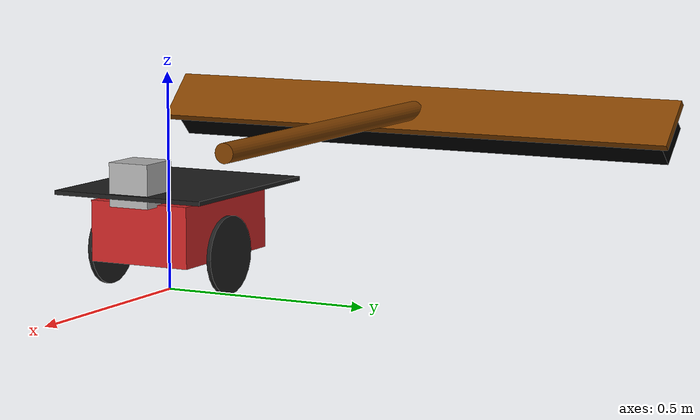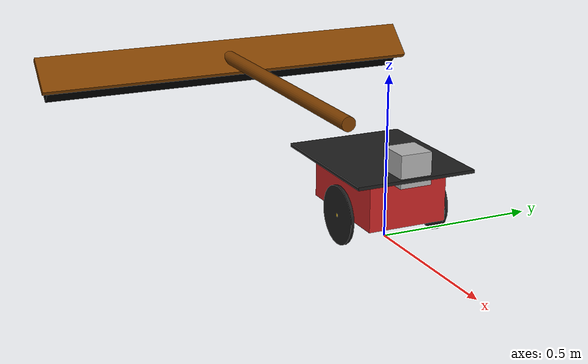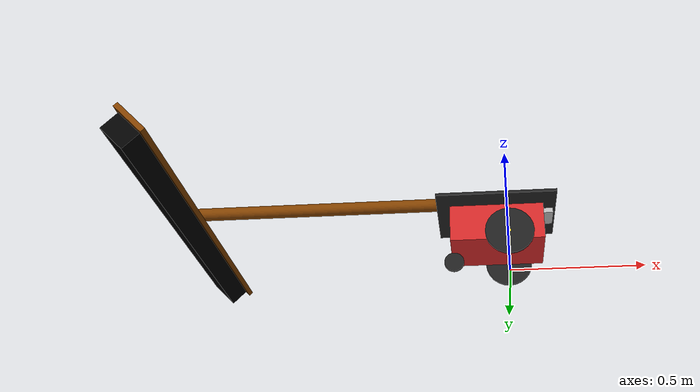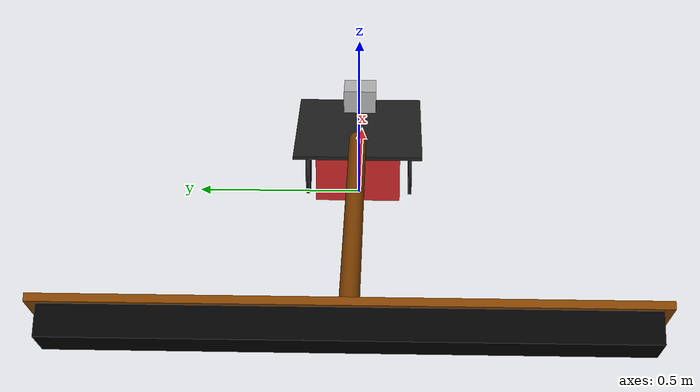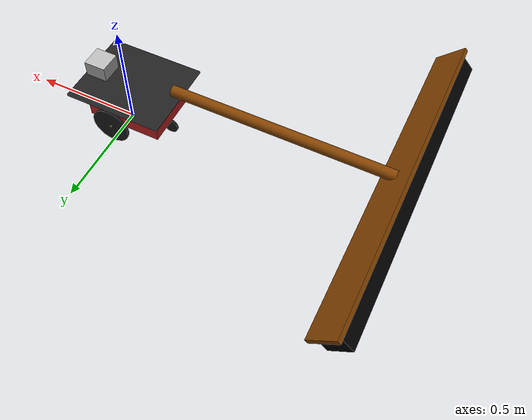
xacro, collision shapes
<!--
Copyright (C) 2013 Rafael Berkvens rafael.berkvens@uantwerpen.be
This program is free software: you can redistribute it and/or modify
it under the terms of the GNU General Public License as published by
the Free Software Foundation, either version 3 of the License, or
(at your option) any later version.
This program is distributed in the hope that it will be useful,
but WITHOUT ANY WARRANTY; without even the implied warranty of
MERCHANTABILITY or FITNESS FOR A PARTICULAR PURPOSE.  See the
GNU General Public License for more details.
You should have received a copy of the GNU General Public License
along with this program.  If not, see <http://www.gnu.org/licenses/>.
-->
<?xml version="1.0"?>
<robot name="pioneer3dx"
	xmlns:xacro="http://ros.org/wiki/xacro">
	<!-- import all gazebo-customization elements, including gazebo colors -->
	<xacro:include filename="$(find p3dx_description)/urdf/pioneer3dx.gazebo" />
	<!-- import the pioneer 3dx's wheels -->
	<xacro:include filename="$(find p3dx_description)/urdf/pioneer3dx_wheel.xacro" />
	<!-- chassis -->
	<link name="base_link">
		<inertial>
			<mass value="3.5" />
			<origin xyz="-0.05 0 0" />
			<inertia ixx="1" ixy="0" ixz="0" iyy="1" iyz="0" izz="1" />
		</inertial>
		<visual>
			<origin xyz="-0.045 0 0.148" rpy="0 0 0" />
			<geometry name="pioneer_geom">
				<mesh filename="package://p3dx_description/meshes/chassis.stl" />
			</geometry>
			<material name="ChassisRed"></material>
		</visual>
		<collision>
			<origin xyz="-0.045 0 0.145" rpy="0 0 0" />
			<geometry>
				<box size="0.35 0.25 0.14" />
			</geometry>
		</collision>
	</link>
	<!-- top_plate -->
	<link name="top_plate">
		<inertial>
			<mass value="0.01" />
			<origin xyz="0 0 0" />
			<inertia ixx="1" ixy="0" ixz="0" iyy="1" iyz="0" izz="1" />
		</inertial>
		<visual>
			<origin xyz="0 0 0" rpy="0 0 0" />
			<geometry name="top_geom">
				<mesh filename="package://p3dx_description/meshes/top.stl" />
			</geometry>
			<material name="TopBlack"></material>
		</visual>
		<collision>
			<origin xyz="0.0 0 0" rpy="0 0 0" />
			<geometry name="pioneer_geom">
				<box size="0.45 0.38 0.01" />
			</geometry>
		</collision>
	</link>
	<joint name="base_top_joint" type="fixed">
		<origin xyz="-0.045 0 0.234" rpy="0 0 0" />
		<parent link="base_link" />
		<child link="top_plate" />
	</joint>
	<!-- swivel -->
	<link name="swivel">
		<inertial>
			<mass value="0.1" />
			<origin xyz="0 0 0" />
			<inertia ixx="0.01" ixy="0" ixz="0" iyy="0.01" iyz="0" izz="0.01" />
		</inertial>
		<visual>
			<origin xyz="0 0 0" rpy="0 0 0" />
			<geometry name="pioneer_geom">
				<mesh filename="package://p3dx_description/meshes/swivel.stl" />
			</geometry>
			<material name="swivel"></material>
		</visual>
		<collision>
			<origin xyz="0 0 0" rpy="0 0 0" />
			<geometry>
				<box size="0.00001 0.00001 0.00001" />
			</geometry>
		</collision>
	</link>
	<joint name="base_swivel_joint" type="fixed">
		<origin xyz="-0.185 0 0.055" rpy="0 0 0" />
		<axis xyz="0 0 1" />
		<anchor xyz="0 0 0" />
		<limit effort="100" velocity="100" k_velocity="0" />
		<joint_properties damping="0.0" friction="0.0" />
		<parent link="base_link" />
		<child link="swivel" />
	</joint>
	<!-- center_hubcap -->
	<link name="center_hubcap">
		<inertial>
			<mass value="0.01" />
			<origin xyz="0 0 0" />
			<inertia ixx="0.012411765597" ixy="-0.000711733678" ixz="0.00050272983" iyy="0.015218160428" iyz="-0.000004273467" izz="0.011763977943" />
		</inertial>
		<visual>
			<origin xyz="0 0 0" rpy="0 0 0" />
			<geometry name="pioneer_geom">
				<mesh filename="package://p3dx_description/meshes/center_hubcap.stl" />
			</geometry>
			<material name="swivel"></material>
		</visual>
		<collision>
			<origin xyz="0 0 0" rpy="0 0 0" />
			<geometry>
				<box size="0.00001 0.00001 0.00001" />
			</geometry>
		</collision>
	</link>
	<joint name="swivel_hubcap_joint" type="fixed">
		<origin xyz="-0.026 0 -0.016" rpy="0 0 0" />
		<axis xyz="0 1 0" />
		<anchor xyz="0 0 0" />
		<limit effort="100" velocity="100" k_velocity="0" />
		<joint_properties damping="0.0" friction="0.0" />
		<parent link="swivel" />
		<child link="center_wheel" />
	</joint>
	<!-- center_wheel -->
	<link name="center_wheel">
		<inertial>
			<mass value="1.0" />
			<origin xyz="0 0 0" />
			<inertia ixx="0.012411765597" ixy="-0.000711733678" ixz="0.00050272983" iyy="0.015218160428" iyz="-0.000004273467" izz="0.011763977943" />
		</inertial>
		<visual>
			<origin xyz="0 0 0" rpy="0 0 0" />
			<geometry name="pioneer_geom">
				<mesh filename="package://p3dx_description/meshes/center_wheel.stl" />
			</geometry>
			<material name="WheelBlack"></material>
		</visual>
		<collision>
			<origin xyz="0 0 0" rpy="${-3.1415927/2.0} 0 0" />
			<geometry>
				<cylinder radius="0.0375" length="0.01" />
			</geometry>
		</collision>
	</link>
	<joint name="center_wheel_joint" type="fixed">
		<origin xyz="-0.0035 0 -0.001" rpy="0 0 0"/>
		<parent link="center_wheel"/>
		<child link="center_hubcap"/>
	</joint>

	<!-- Adicionando a vassoura -->
	<material name="green">
		<color rgba="0 0 0 1"/>
	</material>

	<material name="brown">
		<color rgba="0.5 0.25 0 1"/>
	</material>

	<material name="pink">
		<color rgba="1 0.078 0.576 1"/>
	</material>

	<link name="z_cilinder_joint">
		<visual>
			<geometry>
				<cylinder length="0.05" radius="0.025"/>
			</geometry>
			<material name="pink"/>
			<origin rpy="0 0 0" xyz="0 0 0"/>
		</visual>
		<inertial>
			<origin xyz="0 0 0" rpy="0 0 0"/>
			<mass value="0.05"/>
			<inertia ixx="0.00001823" ixy="0.0" ixz="0.0" iyy="0.00001823" iyz="0.0" izz="0.00001563"/>
		</inertial>
	</link>

	<gazebo reference="z_cilinder_joint">
		<material>Gazebo/Pink</material>
	</gazebo>

	<joint name="z_cilinder_joint_to_robot" type="continuous">
		<parent link="top_plate"/>
		<child link="z_cilinder_joint"/>
		<origin rpy="0 0 0" xyz="-0.2 0 0.025"/>
		<axis xyz="0 0 1"/>
	</joint>

	<link name="y_cilinder_joint">
		<visual>
			<geometry>
				<cylinder length="0.05" radius="0.025"/>
			</geometry>
			<material name="pink"/>
			<origin rpy="1.57079632679 0 0" xyz="0 0 0"/>
		</visual>
		<inertial>
			<origin xyz="0 0 0" rpy="0 0 0"/>
			<mass value="0.05"/>
			<inertia ixx="0.00001823" ixy="0.0" ixz="0.0" iyy="0.00001823" iyz="0.0" izz="0.00001563"/>
		</inertial>
	</link>

	<gazebo reference="y_cilinder_joint">
		<material>Gazebo/Pink</material>
	</gazebo>

	<joint name="y_cilinder_joint_to_robot" type="continuous">
		<parent link="z_cilinder_joint"/>
		<child link="y_cilinder_joint"/>
		<origin rpy="0 0 0" xyz="0 0 0.025"/>
		<axis xyz="0 1 0"/>
	</joint>

	<link name="handle">
		<visual>
			<geometry>
				<cylinder length="1" radius="0.025"/>
			</geometry>
			<material name="brown"/>
			<origin rpy="0 0.78539816339 0" xyz="-0.35355339059 0 -0.35355339059"/>
		</visual>
		<collision>
			<geometry>
				<cylinder length="1" radius="0.025"/>
			</geometry>
			<origin rpy="0 0.78539816339 0" xyz="-0.35355339059 0 -0.35355339059"/>
		</collision>
		<inertial>
			<origin xyz="0 0 0" rpy="0 0 0"/>
			<mass value="0.3"/>
			<inertia ixx="0.02504687" ixy="0.0" ixz="0.0" iyy="0.02504687" iyz="0.0" izz="0.00009375"/>
		</inertial>
	</link>

	<gazebo reference="handle">
		<material>Gazebo/Brown</material>
	</gazebo>

	<joint name="handle_to_robot" type="fixed">
		<parent link="y_cilinder_joint"/>
		<child link="handle"/>
		<origin rpy="0 0.78539816339 0" xyz="0 0 0"/>
	</joint>

	<link name="brush_support">
		<visual>
			<geometry>
				<box size="0.15 1.5 0.02"/>
			</geometry>
			<origin rpy="0 0 0" xyz="0 0 0"/>
			<material name="brown"/>
		</visual>
		<collision>
			<geometry>
				<box size="0.15 1.5 0.02"/>
			</geometry>
			<origin rpy="0 0 0" xyz="0 0 0"/>
		</collision>
		<inertial>
			<origin xyz="0 0 0" rpy="0 0 0"/>
			<mass value="0.8"/>
			<inertia ixx="0.15002667" ixy="0.0" ixz="0.0" iyy="0.00152667" iyz="0.0" izz="0.1515"/>
		</inertial>
	</link>

	<gazebo reference="brush_support">
		<material>Gazebo/Brown</material>
	</gazebo>

	<joint name="handle_to_brush_support" type="fixed">
		<parent link="handle"/>
		<child link="brush_support"/>
		<origin rpy="0 0 0" xyz="-0.70710678 0 -0.70710678"/>
	</joint>

	<link name="brush">
		<visual>
			<geometry>
				<box size="0.12 1.45 0.09"/>
			</geometry>
			<origin rpy="0 0 0" xyz="0 0 -0.045"/>
			<material name="green"/>
		</visual>
		<collision>
			<geometry>
				<box size="0.12 1.45 0.09"/>
			</geometry>
			<origin rpy="0 0 0" xyz="0 0 -0.045"/>
		</collision>
		<inertial>
			<origin xyz="0 0 0" rpy="0 0 0"/>
			<mass value="0.2"/>
			<inertia ixx="0.03517667" ixy="0.0" ixz="0.0" iyy="0.000375" iyz="0.0" izz="0.03528167"/>
		</inertial>
	</link>

	<gazebo reference="brush">
		<material>Gazebo/Black</material>
		<mu1>1</mu1>
		<mu2>1.0</mu2>
		<kp>10000.0</kp>
		<kd>10.0</kd>
	</gazebo>

	<joint name="suport_to_brush" type="fixed">
		<parent link="brush_support"/>
		<child link="brush"/>
		<origin rpy="0 0 0" xyz="0 0 0"/>
	</joint>
	<xacro:p3dx_wheel suffix="left" parent="base_link" reflect="-1"/>
	<xacro:p3dx_wheel suffix="right" parent="base_link" reflect="1"/>
	<!-- front_sonar -->
	<link name="front_sonar">
		<inertial>
			<mass value="0.0001" />
			<origin xyz="0 0 0" />
			<inertia ixx="1" ixy="0" ixz="0" iyy="1" iyz="0" izz="1" />
		</inertial>
		<visual>
			<origin rpy="0 0 0" xyz="0 0 0" />
			<geometry name="pioneer_geom">
				<mesh filename="package://p3dx_description/meshes/front_sonar.stl" />
			</geometry>
			<material name="SonarYellow"></material>
		</visual>
		<collision>
			<origin rpy="0 0 0" xyz="0 0 0" />
			<geometry>
				<box size="0.00001 0.00001 0.00001" />
			</geometry>
		</collision>
	</link>
	<joint name="base_front_joint" type="fixed">
		<origin rpy="0 0 0" xyz="0.109 0 0.209" />
		<parent link="base_link" />
		<child link="front_sonar" />
	</joint>
	<!-- lms100 laser -->
	<link name="lms100">
		<inertial>
			<mass value="1e-5" />
			<origin xyz="0 0 0" rpy="0 0 0" />
			<inertia ixx="1e-6" ixy="0" ixz="0" iyy="1e-6" iyz="0" izz="1e-6" />
		</inertial>
		<visual>
			<origin xyz="0 0 0" rpy="0 0 0" />
			<geometry>
				<mesh filename="package://p3dx_description/meshes/lms100.dae" />
			</geometry>
		</visual>
		<collision>
			<origin xyz="0 0 0" rpy="0 0 0" />
			<geometry>
				<box size="0.1 0.1 0.1" />
			</geometry>
		</collision>
	</link>
	<joint name="lms100_joint" type="fixed">
		<axis xyz="0 1 0" />
		<origin xyz="0.12 0 0.26" rpy="0 0 0" />
		<parent link="base_link" />
		<child link="lms100" />
	</joint>
</robot>

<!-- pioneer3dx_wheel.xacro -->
<robot xmlns:xacro="http://ros.org/wiki/xacro">

	<!-- properties (constants) -->
	<property name="M_PI" value="3.14159" />

	<!-- right/left hubcap + wheel -->
	<xacro:macro name="p3dx_wheel" params="suffix parent reflect">

		<!-- wheel -->
		<link name="p3dx_${suffix}_wheel">
			<inertial>
				<mass value="0.5" />
				<origin xyz="0 0 0" />
				<inertia ixx="0.012411765597" ixy="0" ixz="0" iyy="0.015218160428"
					iyz="0" izz="0.011763977943" />
			</inertial>

			<visual name="base_visual">
				<origin xyz="0 0 0" rpy="0 0 0" />
				<geometry name="pioneer_geom">
					<mesh filename="package://p3dx_description/meshes/${suffix}_wheel.stl" />
				</geometry>
				<material name="WheelBlack">
					<color rgba="0.117 0.117 0.117 1" />
				</material>
			</visual>

			<collision>
				<origin xyz="0 0 0" rpy="${-3.1415927/2} 0 0" />
				<geometry>
					<cylinder radius="0.09" length="0.01" />
				</geometry>
			</collision>
		</link>

		<joint name="base_${suffix}_hubcap_joint" type="fixed">
			<origin xyz="0 0 0" rpy="0 0 0" />
			<parent link="p3dx_${suffix}_wheel" />
			<child link="p3dx_${suffix}_hubcap" />
		</joint>

		<!-- hubcap -->
		<link name="p3dx_${suffix}_hubcap">
			<inertial>
				<mass value="0.01" />
				<origin xyz="0 0 0" />
				<inertia ixx="0.012411765597" ixy="0" ixz="0" iyy="0.015218160428"
					iyz="0" izz="0.011763977943" />
			</inertial>

			<visual name="base_visual">
				<origin xyz="0 0 0" rpy="0 0 0" />
				<geometry name="pioneer_geom">
					<mesh filename="package://p3dx_description/meshes/${suffix}_hubcap.stl" />
				</geometry>

				<material name="HubcapYellow">
					<color rgba="1.0 0.811 0.151 1.0" />
				</material>
			</visual>

			<collision>
				<origin xyz="0 0 0" rpy="0 0 0" />
				<geometry>
					<box size="0.01 0.01 0.01" />
				</geometry>
			</collision>
		</link>

		<joint name="base_${suffix}_wheel_joint" type="continuous">
			<axis xyz="0 1 0" />
			<anchor xyz="0 0 0" />
			<limit effort="100" velocity="100" />
			<joint_properties damping="0.0" friction="0.0" />
			<origin xyz="0 ${reflect*0.158} 0.091" rpy="0 0 0" />
			<parent link="base_link" />
			<child link="p3dx_${suffix}_wheel" />
		</joint>

		<!-- gazebo elements -->

	    <transmission name="${parent}_${suffix}_wheel_trans">
	      <type>pr2_mechanism_model/SimpleTransmission</type>
	      <joint name="base_${suffix}_wheel_joint">
	      	<hardwareInterface>VelocityJointInterface</hardwareInterface>
	  	  </joint>
	      <actuator name="base_${suffix}_wheel_motor">
	        <mechanicalReduction>${reflect * 624/35 * 80/19}</mechanicalReduction>
	      </actuator>
	    </transmission>

		<gazebo reference="p3dx_${suffix}_hubcap">
			<material>Gazebo/Yellow</material>
		</gazebo>

		<gazebo reference="p3dx_${suffix}_wheel">
			<material>Gazebo/Black</material>
			<mu1>0.5</mu1>
			<mu2>50.0</mu2>
			<kp>100000000.0</kp>
			<kd>1.0</kd>
		</gazebo>

	</xacro:macro>

</robot>
